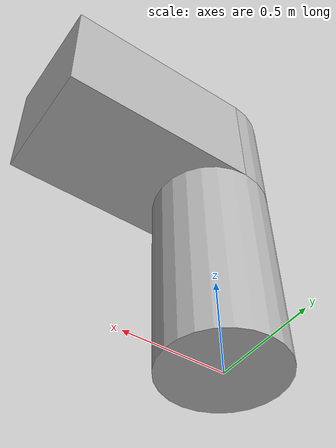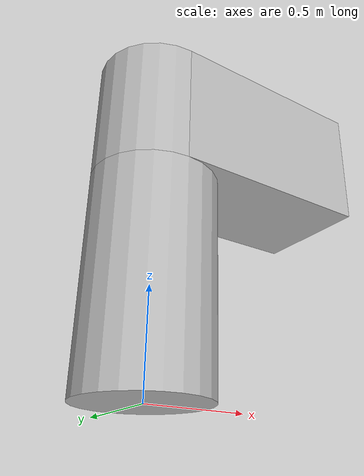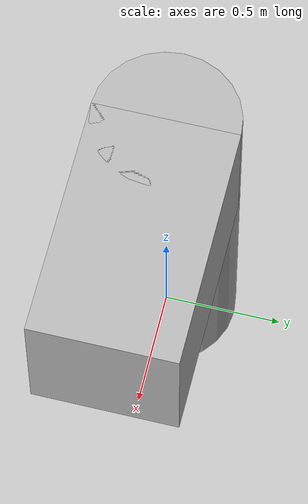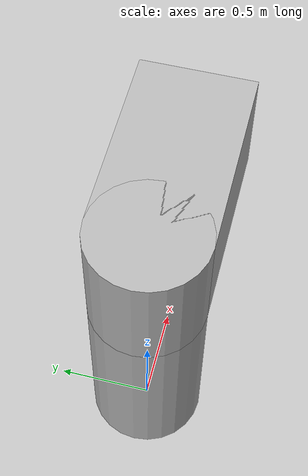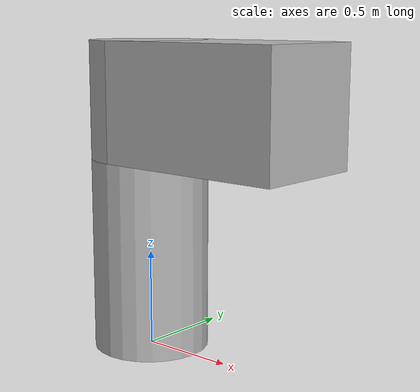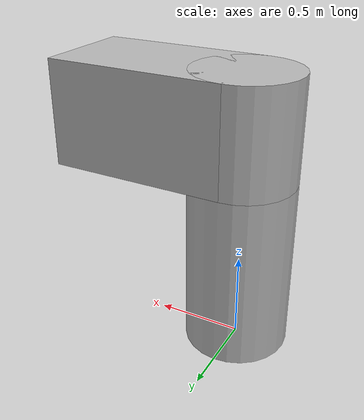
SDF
<?xml version='1.0'?>
<sdf version='1.4'>
    <model name="scara">
        <static>true</static>
        <link name='base_link'>
            <pose>0 0 0.5 0 0 0</pose>

            <collision name='collision'>
                <geometry>
                    <cylinder>
                        <radius>.3</radius>
                        <length>1</length>
                    </cylinder>
                </geometry>
            </collision>

            <visual name='visual'>
                <geometry>
                    <cylinder>
                        <radius>.3</radius>
                        <length>1</length>
                    </cylinder>
                </geometry>
            </visual>
        </link>

        <link name='link1b'>
            <pose>0 0 1.3 0 0 0</pose>

            <collision name='collision'>
                <geometry>
                    <cylinder>
                        <radius>.3</radius>
                        <length>.6</length>
                    </cylinder>
                </geometry>
            </collision>

            <visual name='visual'>
                <geometry>
                    <cylinder>
                        <radius>.3</radius>
                        <length>.6</length>
                    </cylinder>
                </geometry>
            </visual>
        </link>

        <link name='link1'>
            <pose>0.5 0 1.3 0 0 0</pose>

            <collision name='collision'>
                <geometry>
                    <box>
                        <size>1 .6 .6</size>
                    </box>
                </geometry>
            </collision>

            <visual name='visual'>
                <geometry>
                    <box>
                        <size>1 .6 .6</size>
                    </box>
                </geometry>
            </visual>
        </link>
    </model>
</sdf>
